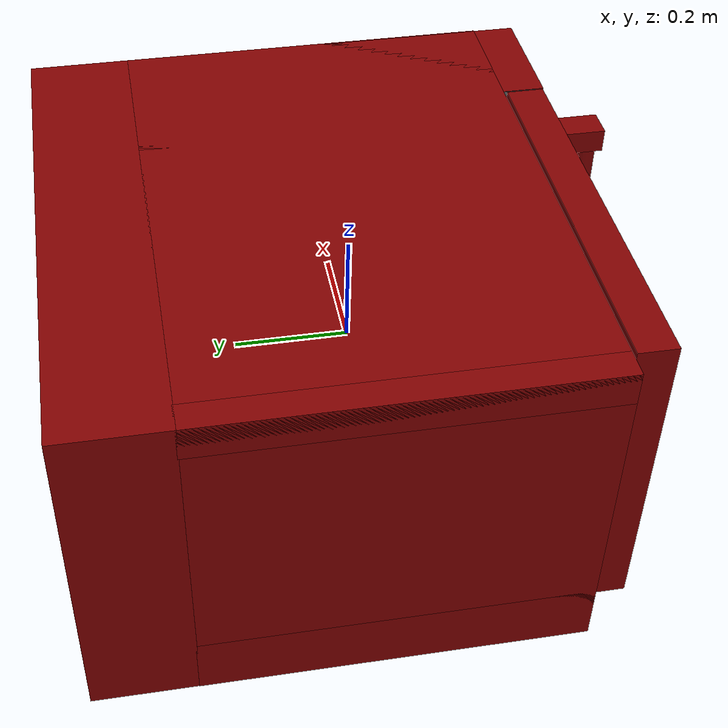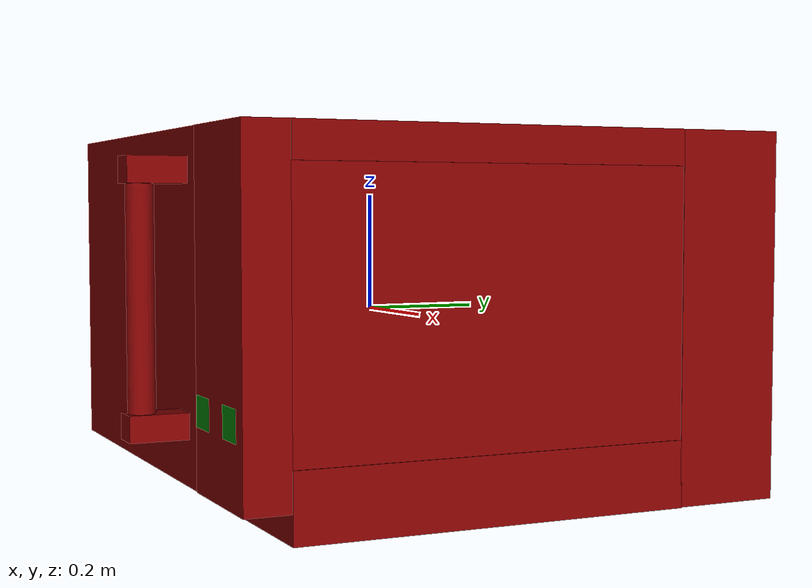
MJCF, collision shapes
<?xml version='1.0' encoding='UTF-8'?>
<mujoco model="model">
  <compiler angle="radian"/>
  <asset>
    <texture file="visuals/material_0.png" name="tex-model" type="2d"/>
    <texture type="2d" name="image7" file="visuals/image7.png"/>
    <texture type="2d" name="image2" file="visuals/image2.png"/>
    <texture type="2d" name="image5" file="visuals/image5.png"/>
    <material name="model" reflectance="0.5" texrepeat="1 1" texture="tex-model" texuniform="false"/>
    <material name="TX_Microwave_3_1" texture="image7" specular="0.5" shininess="0.25"/>
    <material name="TX_Microwave_3_2" texture="image2" specular="0.5" shininess="0.25"/>
    <material name="TX_Microwave_3_3" texture="image5" specular="0.5" shininess="0.25"/>
    <mesh file="visuals/model_0.obj" name="model_0_vis" scale="1 1 1"/>
    <mesh file="visuals/model_1.obj" name="model_1_vis" scale="1 1 1"/>
    <mesh file="visuals/model_2.obj" name="model_2_vis" scale="1 1 1"/>
    <mesh file="visuals/door_0.obj" name="door_0_vis" scale="1 1 1"/>
    <mesh file="visuals/door_1.obj" name="door_1_vis" scale="1 1 1"/>
    <mesh file="visuals/door_2.obj" name="door_2_vis" scale="1 1 1"/>
  </asset>
  <default>
    <default class="visual">
      <geom conaffinity="0" contype="0" group="1" type="mesh"/>
    </default>
    <default class="collision">
      <geom group="0" rgba="0.5 0 0 0.5"/>
    </default>
    <default class="region">
      <geom group="1" conaffinity="0" contype="0" rgba="0 1 0 0"/>
    </default>
  </default>
  <worldbody>
    <body>
      <body name="object">
        <geom solimp="0.998 0.998 0.001" solref="0.001 1" density="100" friction="0.95 0.3 0.1" type="mesh" mesh="model_0_vis" material="TX_Microwave_3_2" class="visual"/>
        <geom solimp="0.998 0.998 0.001" solref="0.001 1" density="100" friction="0.95 0.3 0.1" type="mesh" mesh="model_1_vis" material="TX_Microwave_3_3" class="visual"/>
        <geom solimp="0.998 0.998 0.001" solref="0.001 1" density="100" friction="0.95 0.3 0.1" type="mesh" mesh="model_2_vis" material="TX_Microwave_3_1" class="visual"/>
        <!-- Numpad inside fix -->
        <geom class="visual" type="box" rgba="0.4 0.4 0.4 1" pos="0.36 -0.369 0.029" size="0.095 0.033 0.25"/>
        <geom class="visual" type="box" rgba="0.4 0.4 0.4 1" pos="0.36 -0.362 0.29" size="0.095 0.03 0.011"/>
        <geom class="visual" type="box" rgba="0.4 0.4 0.4 1" pos="0.36 -0.363 -0.238" size="0.095 0.03 0.017"/>
        <!-- Back -->
        <geom class="collision" type="box" pos="0 0.42 0" size="0.485 0.09 0.302"/>
        <!-- Bottom -->
        <geom class="collision" type="box" pos="0 0 -0.248" size="0.485 0.332 0.055"/>
        <!-- Left -->
        <geom class="collision" type="box" pos="-0.46 0 0" size="0.025 0.332 0.302"/>
        <!-- Right -->
        <geom class="collision" type="box" pos="0.335 0 0" size="0.148 0.332 0.302"/>
        <!-- Top -->
        <geom class="collision" type="box" pos="0 0 0.273" size="0.485 0.332 0.029"/>
        <!-- Numpad -->
        <geom class="collision" type="box" pos="0.374 -0.369 0.023" size="0.109 0.037 0.279"/>
        <!-- start/stop buttons -->
        <geom class="collision" type="box" pos="0.425 -0.385 -0.13" size="0.03 0.0216 0.025" name="start_button" rgba="0.0 0.5 0 0.5"/>
        <geom class="collision" type="box" pos="0.30 -0.385 -0.13" size="0.03 0.0216 0.025" name="stop_button" rgba="0.0 0.5 0 0.5"/>
        <geom class="collision" type="cylinder" pos="-0.12 -0.02 -0.195" size="0.22 0.005" rgba="0 1 0 0.5" name="tray"/>
        <body name="door">
          <joint axis="0 0 1" limited="true" name="microjoint" range="-1.57 0" damping="2" frictionloss="2" armature=".01" pos="-0.445 -0.38 0" ref="0"/>
          <geom solimp="0.998 0.998 0.001" solref="0.001 1" density="100" friction="0.95 0.3 0.1" type="mesh" mesh="door_0_vis" material="TX_Microwave_3_2" class="visual"/>
          <geom solimp="0.998 0.998 0.001" solref="0.001 1" density="100" friction="0.95 0.3 0.1" type="mesh" mesh="door_1_vis" material="TX_Microwave_3_3" class="visual"/>
          <geom solimp="0.998 0.998 0.001" solref="0.001 1" density="100" friction="0.95 0.3 0.1" type="mesh" mesh="door_2_vis" material="TX_Microwave_3_1" class="visual"/>
          <!-- Door Main -->
          <geom class="collision" type="box" pos="-0.09 -0.371 0.023" size="0.3519 0.033 0.279" name="door_main"/>
          <!-- Handle Top -->
          <geom class="collision" type="box" pos="0.204 -0.453 0.236" size="0.027 0.047 0.021"/>
          <!-- Handle Bottom -->
          <geom class="collision" type="box" pos="0.204 -0.453 -0.159" size="0.027 0.047 0.021"/>
          <!-- Handle Main -->
          <geom class="collision" type="cylinder" pos="0.204 -0.474 0.039" size="0.022 0.18 0" name="door_handle_main"/>
        </body>
        <!-- exterior bounding box points -->
        <geom class="region" name="reg_main" type="box" pos="0.0 0.028500000000000025 0.022499999999999992" size="0.485 0.4365 0.2825"/>
        <!-- interior bounding box points -->
        <geom class="region" name="reg_int" type="box" pos="-0.124 -0.0020000000000000018 0.021999999999999992" size="0.311 0.332 0.222"/>
      <geom class="region" name="reg_tray" type="cylinder" pos="-0.12 -0.02 0.026999999999999996" size="0.22 0.216"/></body>
    </body>
  </worldbody>
</mujoco>
